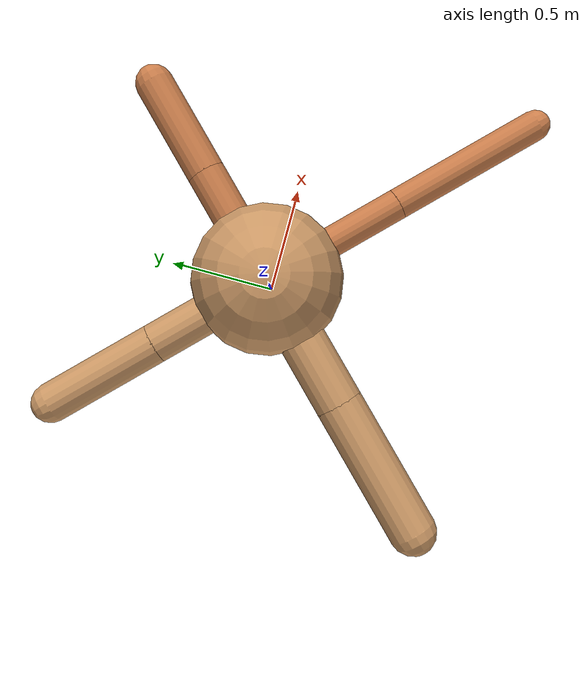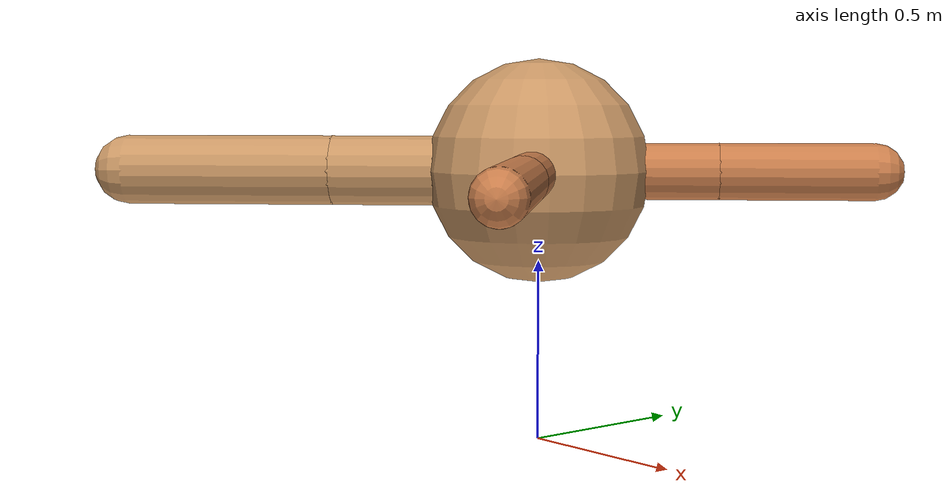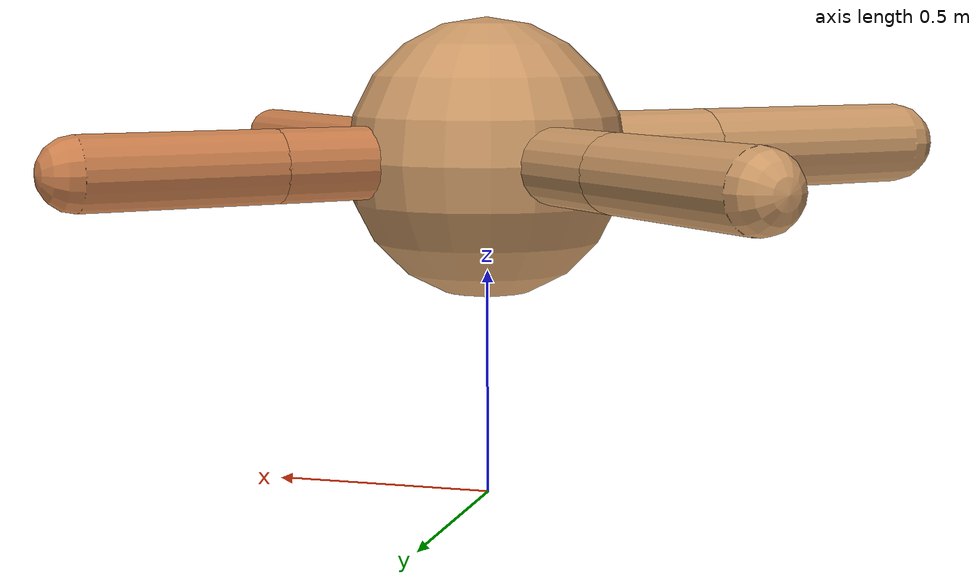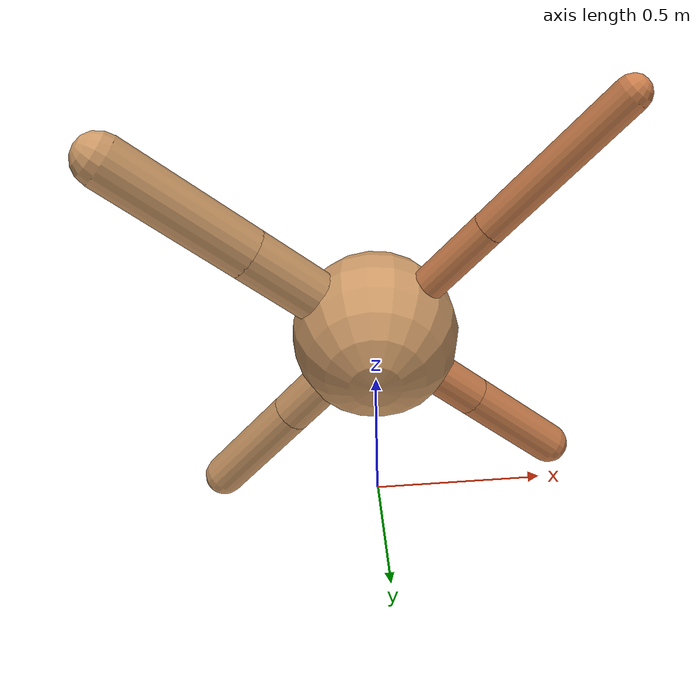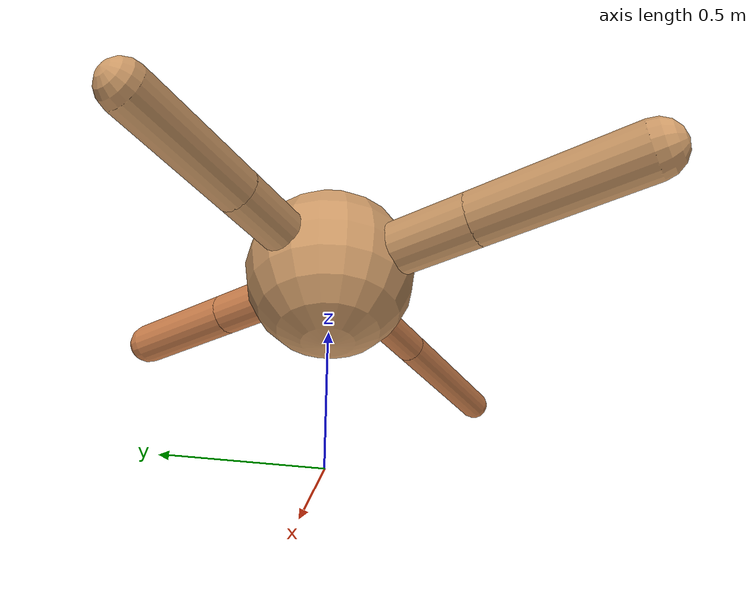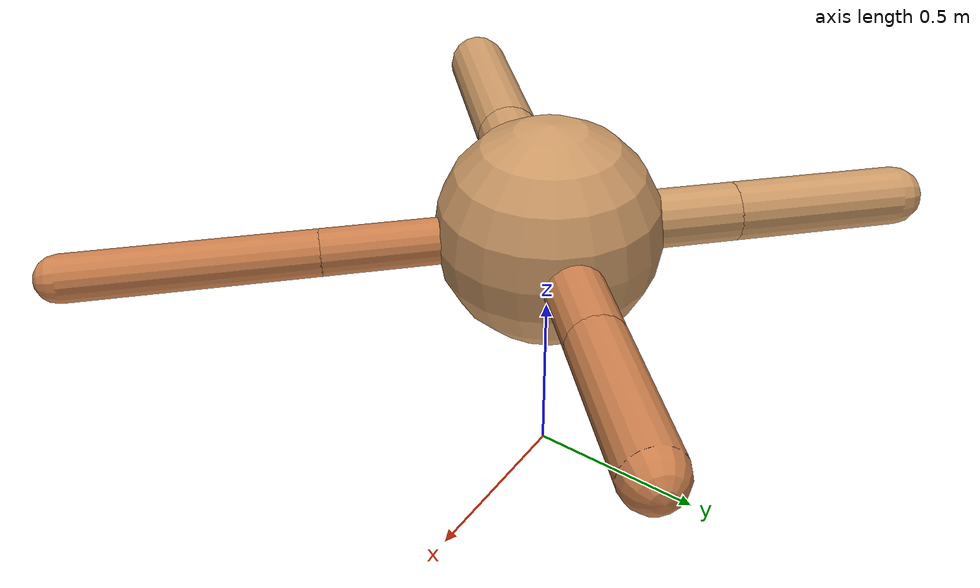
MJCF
<?xml version="1.0" ?>
<mujoco model="ant">

	<compiler angle="degree" coordinate="local" inertiafromgeom="true"/>

	<option integrator="RK4" timestep="0.01"/>

	<custom>

		<numeric data="0.0 0.0 0.55 1.0 0.0 0.0 0.0 0.0 1.0 0.0 -1.0 0.0 -1.0 0.0 1.0" name="init_qpos"/>

	</custom>

	<default>

		<joint armature="1" damping="1" limited="true"/>

		<geom conaffinity="0" condim="3" density="5.0" friction="1.5 0.1 0.1" margin="0.01" rgba="0.8 0.6 0.4 1"/>

	</default>

	<worldbody>

		<body name="torso" pos="0 0 0.75">

			<geom name="torso_geom" pos="0 0 0" size="0.3081176253998012" type="sphere"/>

			<!--joint armature="0" damping="0" limited="false" margin="0.01" name="root" pos="0 0 0" type="free"/-->

			<body name="front_left_leg" pos="0 0 0">

				<geom fromto="0 0 0 0.2 0.2 0" name="aux_1_geom" size="0.07800610426377266" type="capsule" rgba=".8 .5 .3 1"/>

				<body name="aux_1" pos="0.2 0.2 0">

					<joint axis="0 0 1" name="hip_1" pos="0.0 0.0 0.0" range="-40 40" type="hinge"/>

					<geom fromto="0 0 0 0.14847873752808768 0.14847873752808768 0" name="left_leg_geom" size="0.07800610426377266" type="capsule" rgba=".8 .5 .3 1"/>

					<body pos="0.14847873752808768 0.14847873752808768 0" name="front_left_foot">

						<joint axis="-1 1 0" name="ankle_1" pos="0.0 0.0 0.0" range="30 100" type="hinge"/>

						<geom fromto="0 0 0 0.29695747505617537 0.29695747505617537 0" name="left_ankle_geom" size="0.07800610426377266" type="capsule" rgba=".8 .5 .3 1"/>

					</body>

				</body>

			</body>

			<body name="front_right_leg" pos="0 0 0">

				<geom fromto="0 0 0 -0.2 0.2 0" name="aux_2_geom" size="0.08115836192505922" type="capsule"/>

				<body name="aux_2" pos="-0.2 0.2 0">

					<joint axis="0 0 1" name="hip_2" pos="0.0 0.0 0.0" range="-40 40" type="hinge"/>

					<geom fromto="0 0 0 -0.166735206347323 0.166735206347323 0" name="right_leg_geom" size="0.08115836192505922" type="capsule"/>

					<body pos="-0.166735206347323 0.166735206347323 0" name="front_right_foot">

						<joint axis="1 1 0" name="ankle_2" pos="0.0 0.0 0.0" range="-100 -30" type="hinge"/>

						<geom fromto="0 0 0 -0.333470412694646 0.333470412694646 0" name="right_ankle_geom" size="0.08115836192505922" type="capsule"/>

					</body>

				</body>

			</body>

			<body name="left_back_leg" pos="0 0 0">

				<geom fromto="0 0 0 -0.2 -0.2 0" name="aux_3_geom" size="0.09710761650132224" type="capsule"/>

				<body name="aux_3" pos="-0.2 -0.2 0">

					<joint axis="0 0 1" name="hip_3" pos="0.0 0.0 0.0" range="-40 40" type="hinge"/>

					<geom fromto="0 0 0 -0.2063433789359825 -0.2063433789359825 0" name="back_leg_geom" size="0.09710761650132224" type="capsule"/>

					<body pos="-0.2063433789359825 -0.2063433789359825 0" name="left_back_foot">

						<joint axis="-1 1 0" name="ankle_3" pos="0.0 0.0 0.0" range="-100 -30" type="hinge"/>

						<geom fromto="0 0 0 -0.412686757871965 -0.412686757871965 0" name="third_ankle_geom" size="0.09710761650132224" type="capsule"/>

					</body>

				</body>

			</body>

			<body name="right_back_leg" pos="0 0 0">

				<geom fromto="0 0 0 0.2 -0.2 0" name="aux_4_geom" size="0.06264880521463789" type="capsule" rgba=".8 .5 .3 1"/>

				<body name="aux_4" pos="0.2 -0.2 0">

					<joint axis="0 0 1" name="hip_4" pos="0.0 0.0 0.0" range="-40 40" type="hinge"/>

					<geom fromto="0 0 0 0.22637418677186752 -0.22637418677186752 0" name="rightback_leg_geom" size="0.06264880521463789" type="capsule" rgba=".8 .5 .3 1"/>

					<body pos="0.22637418677186752 -0.22637418677186752 0" name="right_back_foot">

						<joint axis="1 1 0" name="ankle_4" pos="0.0 0.0 0.0" range="30 100" type="hinge"/>

						<geom fromto="0 0 0 0.45274837354373504 -0.45274837354373504 0" name="fourth_ankle_geom" size="0.06264880521463789" type="capsule" rgba=".8 .5 .3 1"/>

					</body>

				</body>

			</body>

		</body>

	</worldbody>

	<actuator>

		<motor ctrllimited="true" ctrlrange="-1.0 1.0" joint="hip_4" gear="150"/>

		<motor ctrllimited="true" ctrlrange="-1.0 1.0" joint="ankle_4" gear="150"/>

		<motor ctrllimited="true" ctrlrange="-1.0 1.0" joint="hip_1" gear="150"/>

		<motor ctrllimited="true" ctrlrange="-1.0 1.0" joint="ankle_1" gear="150"/>

		<motor ctrllimited="true" ctrlrange="-1.0 1.0" joint="hip_2" gear="150"/>

		<motor ctrllimited="true" ctrlrange="-1.0 1.0" joint="ankle_2" gear="150"/>

		<motor ctrllimited="true" ctrlrange="-1.0 1.0" joint="hip_3" gear="150"/>

		<motor ctrllimited="true" ctrlrange="-1.0 1.0" joint="ankle_3" gear="150"/>

	</actuator>

</mujoco>
